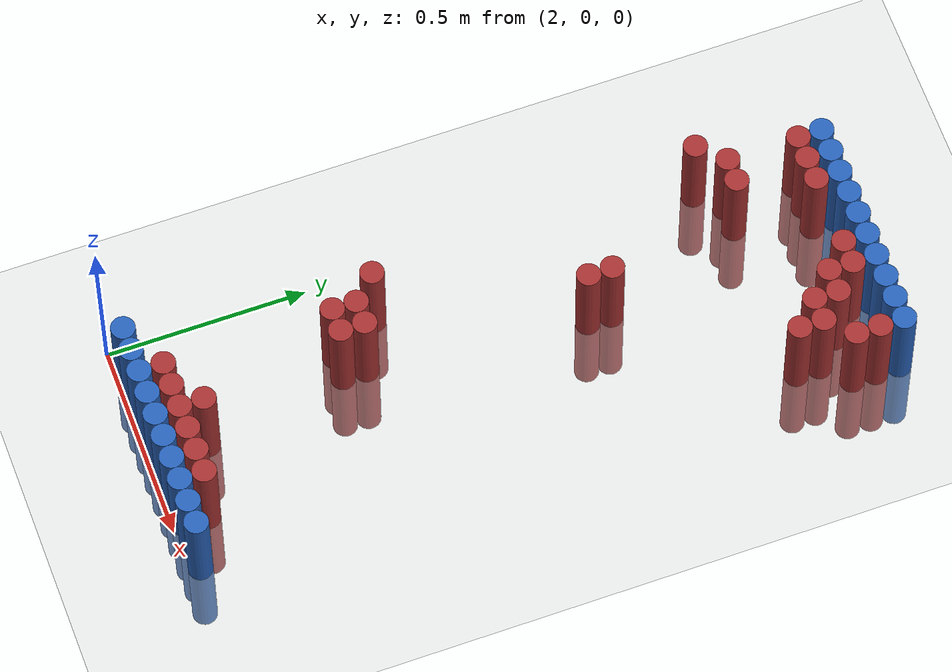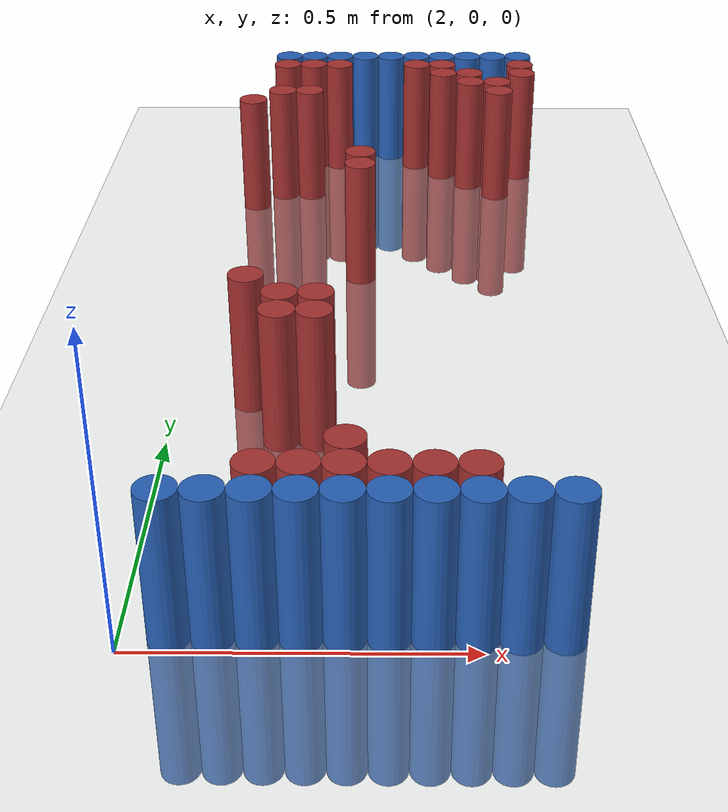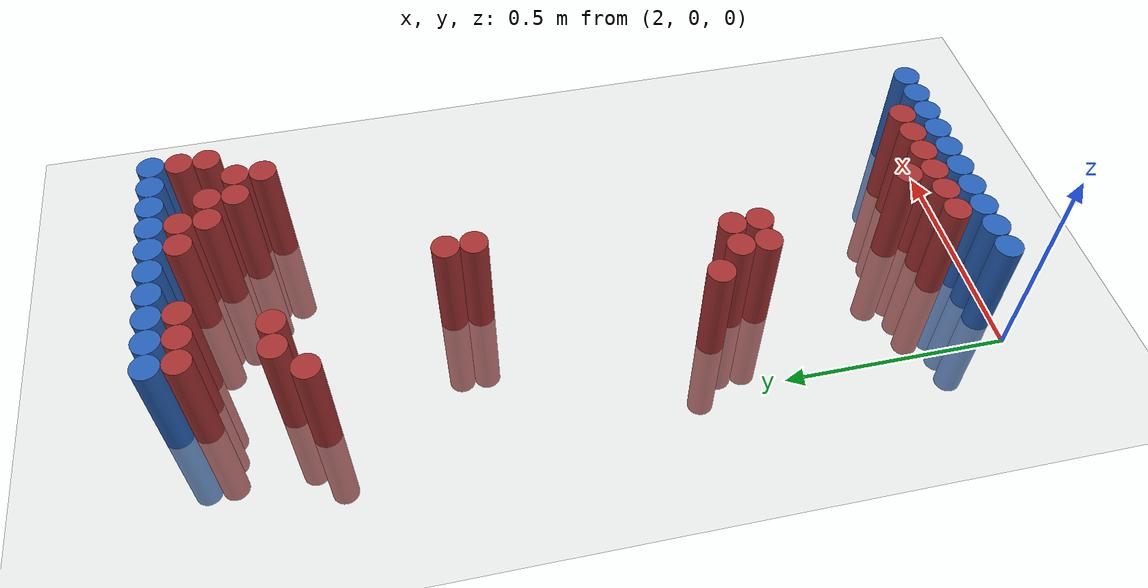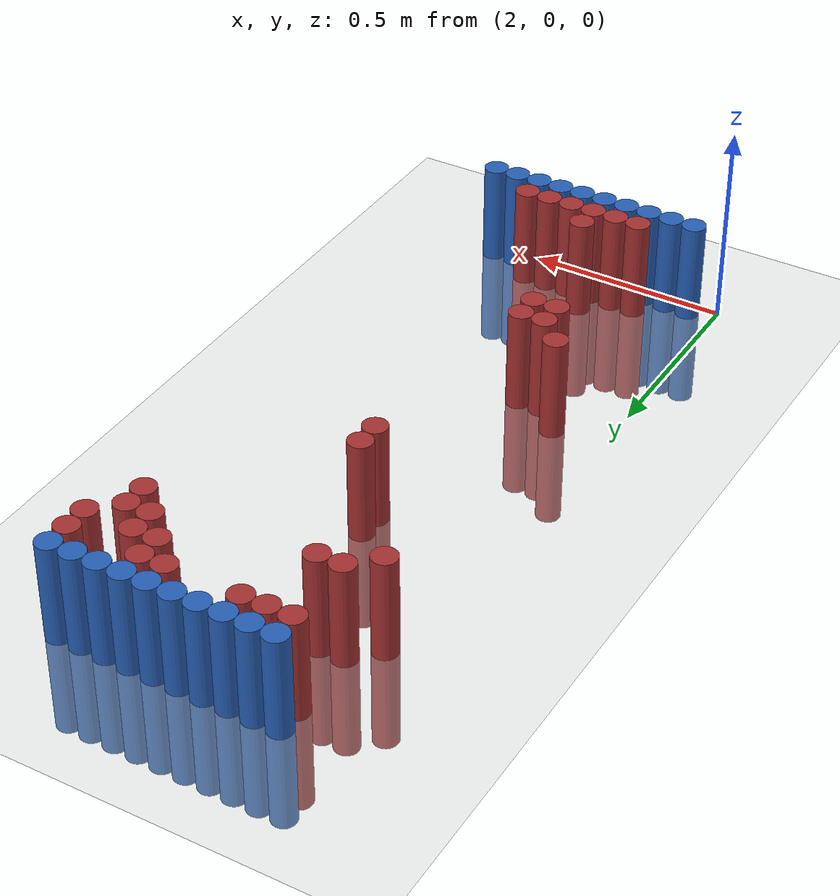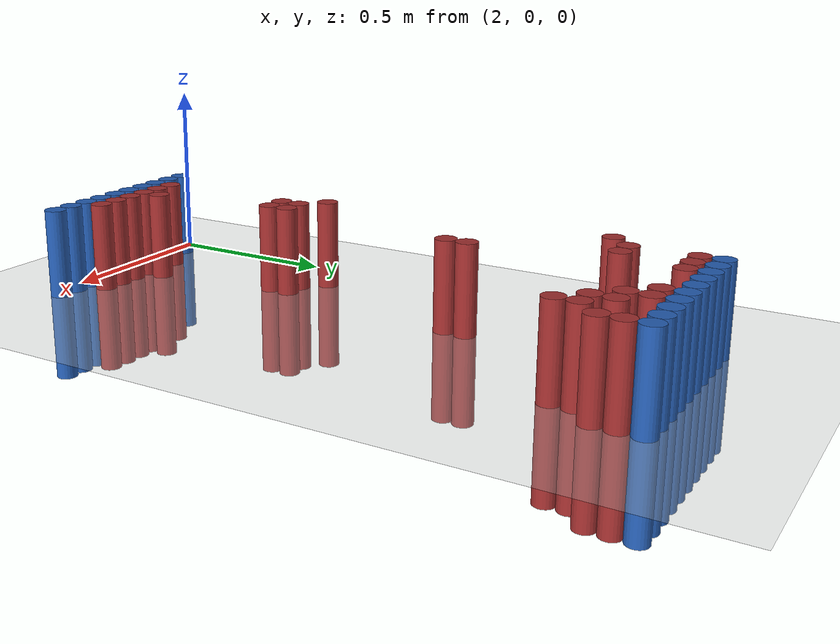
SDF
<sdf version="1.6">
 <world name="default">
  <model name="ground_plane">
   <static>1</static>
   <link name="link">
    <collision name="collision">
     <geometry><plane><normal>0 0 1</normal><size>100 100</size></plane></geometry>
     <surface><friction><ode><mu>100</mu><mu2>50</mu2></ode></friction></surface>
    </collision>
    <visual name="visual">
     <cast_shadows>0</cast_shadows>
     <geometry><plane><normal>0 0 1</normal><size>100 100</size></plane></geometry>
     <material>
      <script><uri>file://media/materials/scripts/gazebo.material</uri><name>Gazebo/Grey</name></script>
     </material>
    </visual>
   </link>
  </model>
  <model name="unit_cylinder_96">
   <static>1</static>
   <pose>2.130000 1.770000 0.000000 0.000000 0.000000 0.000000</pose>
   <link name="link">
    <inertial>
     <mass>1</mass>
     <inertia><ixx>0.145833</ixx><ixy>0</ixy><ixz>0</ixz><iyy>0.145833</iyy><iyz>0</iyz><izz>0.125</izz></inertia>
    </inertial>
    <collision name="collision">
     <geometry><cylinder><radius>0.030000</radius><length>0.5</length></cylinder></geometry>
    </collision>
    <visual name="visual">
     <geometry><cylinder><radius>0.030000</radius><length>0.5</length></cylinder></geometry>
     <material>
      <ambient>0.152000 0.379000 0.720000 1</ambient>
      <diffuse>0.152000 0.379000 0.720000 1</diffuse>
     </material>
     <material>
      <script><name>Gazebo/Grey</name><uri>file://media/materials/scripts/gazebo.material</uri></script>
     </material>
    </visual>
   </link>
  </model>
  <model name="unit_cylinder_97">
   <static>1</static>
   <pose>2.190000 1.770000 0.000000 0.000000 0.000000 0.000000</pose>
   <link name="link">
    <inertial>
     <mass>1</mass>
     <inertia><ixx>0.145833</ixx><ixy>0</ixy><ixz>0</ixz><iyy>0.145833</iyy><iyz>0</iyz><izz>0.125</izz></inertia>
    </inertial>
    <collision name="collision">
     <geometry><cylinder><radius>0.030000</radius><length>0.5</length></cylinder></geometry>
    </collision>
    <visual name="visual">
     <geometry><cylinder><radius>0.030000</radius><length>0.5</length></cylinder></geometry>
     <material>
      <ambient>0.152000 0.379000 0.720000 1</ambient>
      <diffuse>0.152000 0.379000 0.720000 1</diffuse>
     </material>
     <material>
      <script><name>Gazebo/Grey</name><uri>file://media/materials/scripts/gazebo.material</uri></script>
     </material>
    </visual>
   </link>
  </model>
  <model name="unit_cylinder_98">
   <static>1</static>
   <pose>2.250000 1.770000 0.000000 0.000000 0.000000 0.000000</pose>
   <link name="link">
    <inertial>
     <mass>1</mass>
     <inertia><ixx>0.145833</ixx><ixy>0</ixy><ixz>0</ixz><iyy>0.145833</iyy><iyz>0</iyz><izz>0.125</izz></inertia>
    </inertial>
    <collision name="collision">
     <geometry><cylinder><radius>0.030000</radius><length>0.5</length></cylinder></geometry>
    </collision>
    <visual name="visual">
     <geometry><cylinder><radius>0.030000</radius><length>0.5</length></cylinder></geometry>
     <material>
      <ambient>0.152000 0.379000 0.720000 1</ambient>
      <diffuse>0.152000 0.379000 0.720000 1</diffuse>
     </material>
     <material>
      <script><name>Gazebo/Grey</name><uri>file://media/materials/scripts/gazebo.material</uri></script>
     </material>
    </visual>
   </link>
  </model>
  <model name="unit_cylinder_99">
   <static>1</static>
   <pose>2.310000 1.770000 0.000000 0.000000 0.000000 0.000000</pose>
   <link name="link">
    <inertial>
     <mass>1</mass>
     <inertia><ixx>0.145833</ixx><ixy>0</ixy><ixz>0</ixz><iyy>0.145833</iyy><iyz>0</iyz><izz>0.125</izz></inertia>
    </inertial>
    <collision name="collision">
     <geometry><cylinder><radius>0.030000</radius><length>0.5</length></cylinder></geometry>
    </collision>
    <visual name="visual">
     <geometry><cylinder><radius>0.030000</radius><length>0.5</length></cylinder></geometry>
     <material>
      <ambient>0.152000 0.379000 0.720000 1</ambient>
      <diffuse>0.152000 0.379000 0.720000 1</diffuse>
     </material>
     <material>
      <script><name>Gazebo/Grey</name><uri>file://media/materials/scripts/gazebo.material</uri></script>
     </material>
    </visual>
   </link>
  </model>
  <model name="unit_cylinder_100">
   <static>1</static>
   <pose>2.370000 1.770000 0.000000 0.000000 0.000000 0.000000</pose>
   <link name="link">
    <inertial>
     <mass>1</mass>
     <inertia><ixx>0.145833</ixx><ixy>0</ixy><ixz>0</ixz><iyy>0.145833</iyy><iyz>0</iyz><izz>0.125</izz></inertia>
    </inertial>
    <collision name="collision">
     <geometry><cylinder><radius>0.030000</radius><length>0.5</length></cylinder></geometry>
    </collision>
    <visual name="visual">
     <geometry><cylinder><radius>0.030000</radius><length>0.5</length></cylinder></geometry>
     <material>
      <ambient>0.152000 0.379000 0.720000 1</ambient>
      <diffuse>0.152000 0.379000 0.720000 1</diffuse>
     </material>
     <material>
      <script><name>Gazebo/Grey</name><uri>file://media/materials/scripts/gazebo.material</uri></script>
     </material>
    </visual>
   </link>
  </model>
  <model name="unit_cylinder_101">
   <static>1</static>
   <pose>2.430000 1.770000 0.000000 0.000000 0.000000 0.000000</pose>
   <link name="link">
    <inertial>
     <mass>1</mass>
     <inertia><ixx>0.145833</ixx><ixy>0</ixy><ixz>0</ixz><iyy>0.145833</iyy><iyz>0</iyz><izz>0.125</izz></inertia>
    </inertial>
    <collision name="collision">
     <geometry><cylinder><radius>0.030000</radius><length>0.5</length></cylinder></geometry>
    </collision>
    <visual name="visual">
     <geometry><cylinder><radius>0.030000</radius><length>0.5</length></cylinder></geometry>
     <material>
      <ambient>0.152000 0.379000 0.720000 1</ambient>
      <diffuse>0.152000 0.379000 0.720000 1</diffuse>
     </material>
     <material>
      <script><name>Gazebo/Grey</name><uri>file://media/materials/scripts/gazebo.material</uri></script>
     </material>
    </visual>
   </link>
  </model>
  <model name="unit_cylinder_102">
   <static>1</static>
   <pose>2.490000 1.770000 0.000000 0.000000 0.000000 0.000000</pose>
   <link name="link">
    <inertial>
     <mass>1</mass>
     <inertia><ixx>0.145833</ixx><ixy>0</ixy><ixz>0</ixz><iyy>0.145833</iyy><iyz>0</iyz><izz>0.125</izz></inertia>
    </inertial>
    <collision name="collision">
     <geometry><cylinder><radius>0.030000</radius><length>0.5</length></cylinder></geometry>
    </collision>
    <visual name="visual">
     <geometry><cylinder><radius>0.030000</radius><length>0.5</length></cylinder></geometry>
     <material>
      <ambient>0.152000 0.379000 0.720000 1</ambient>
      <diffuse>0.152000 0.379000 0.720000 1</diffuse>
     </material>
     <material>
      <script><name>Gazebo/Grey</name><uri>file://media/materials/scripts/gazebo.material</uri></script>
     </material>
    </visual>
   </link>
  </model>
  <model name="unit_cylinder_103">
   <static>1</static>
   <pose>2.550000 1.770000 0.000000 0.000000 0.000000 0.000000</pose>
   <link name="link">
    <inertial>
     <mass>1</mass>
     <inertia><ixx>0.145833</ixx><ixy>0</ixy><ixz>0</ixz><iyy>0.145833</iyy><iyz>0</iyz><izz>0.125</izz></inertia>
    </inertial>
    <collision name="collision">
     <geometry><cylinder><radius>0.030000</radius><length>0.5</length></cylinder></geometry>
    </collision>
    <visual name="visual">
     <geometry><cylinder><radius>0.030000</radius><length>0.5</length></cylinder></geometry>
     <material>
      <ambient>0.152000 0.379000 0.720000 1</ambient>
      <diffuse>0.152000 0.379000 0.720000 1</diffuse>
     </material>
     <material>
      <script><name>Gazebo/Grey</name><uri>file://media/materials/scripts/gazebo.material</uri></script>
     </material>
    </visual>
   </link>
  </model>
  <model name="unit_cylinder_104">
   <static>1</static>
   <pose>2.610000 1.770000 0.000000 0.000000 0.000000 0.000000</pose>
   <link name="link">
    <inertial>
     <mass>1</mass>
     <inertia><ixx>0.145833</ixx><ixy>0</ixy><ixz>0</ixz><iyy>0.145833</iyy><iyz>0</iyz><izz>0.125</izz></inertia>
    </inertial>
    <collision name="collision">
     <geometry><cylinder><radius>0.030000</radius><length>0.5</length></cylinder></geometry>
    </collision>
    <visual name="visual">
     <geometry><cylinder><radius>0.030000</radius><length>0.5</length></cylinder></geometry>
     <material>
      <ambient>0.152000 0.379000 0.720000 1</ambient>
      <diffuse>0.152000 0.379000 0.720000 1</diffuse>
     </material>
     <material>
      <script><name>Gazebo/Grey</name><uri>file://media/materials/scripts/gazebo.material</uri></script>
     </material>
    </visual>
   </link>
  </model>
  <model name="unit_cylinder_105">
   <static>1</static>
   <pose>2.670000 1.770000 0.000000 0.000000 0.000000 0.000000</pose>
   <link name="link">
    <inertial>
     <mass>1</mass>
     <inertia><ixx>0.145833</ixx><ixy>0</ixy><ixz>0</ixz><iyy>0.145833</iyy><iyz>0</iyz><izz>0.125</izz></inertia>
    </inertial>
    <collision name="collision">
     <geometry><cylinder><radius>0.030000</radius><length>0.5</length></cylinder></geometry>
    </collision>
    <visual name="visual">
     <geometry><cylinder><radius>0.030000</radius><length>0.5</length></cylinder></geometry>
     <material>
      <ambient>0.152000 0.379000 0.720000 1</ambient>
      <diffuse>0.152000 0.379000 0.720000 1</diffuse>
     </material>
     <material>
      <script><name>Gazebo/Grey</name><uri>file://media/materials/scripts/gazebo.material</uri></script>
     </material>
    </visual>
   </link>
  </model>
  <model name="unit_cylinder_125">
   <static>1</static>
   <pose>2.130000 1.710000 0.000000 0.000000 0.000000 0.000000</pose>
   <link name="link">
    <inertial>
     <mass>1</mass>
     <inertia><ixx>0.145833</ixx><ixy>0</ixy><ixz>0</ixz><iyy>0.145833</iyy><iyz>0</iyz><izz>0.125</izz></inertia>
    </inertial>
    <collision name="collision">
     <geometry><cylinder><radius>0.030000</radius><length>0.5</length></cylinder></geometry>
    </collision>
    <visual name="visual">
     <geometry><cylinder><radius>0.030000</radius><length>0.5</length></cylinder></geometry>
     <material>
      <ambient>0.648000 0.192000 0.192000 1</ambient>
      <diffuse>0.648000 0.192000 0.192000 1</diffuse>
     </material>
     <material>
      <script><name>Gazebo/Grey</name><uri>file://media/materials/scripts/gazebo.material</uri></script>
     </material>
    </visual>
   </link>
  </model>
  <model name="unit_cylinder_126">
   <static>1</static>
   <pose>2.190000 1.710000 0.000000 0.000000 0.000000 0.000000</pose>
   <link name="link">
    <inertial>
     <mass>1</mass>
     <inertia><ixx>0.145833</ixx><ixy>0</ixy><ixz>0</ixz><iyy>0.145833</iyy><iyz>0</iyz><izz>0.125</izz></inertia>
    </inertial>
    <collision name="collision">
     <geometry><cylinder><radius>0.030000</radius><length>0.5</length></cylinder></geometry>
    </collision>
    <visual name="visual">
     <geometry><cylinder><radius>0.030000</radius><length>0.5</length></cylinder></geometry>
     <material>
      <ambient>0.648000 0.192000 0.192000 1</ambient>
      <diffuse>0.648000 0.192000 0.192000 1</diffuse>
     </material>
     <material>
      <script><name>Gazebo/Grey</name><uri>file://media/materials/scripts/gazebo.material</uri></script>
     </material>
    </visual>
   </link>
  </model>
  <model name="unit_cylinder_127">
   <static>1</static>
   <pose>2.250000 1.710000 0.000000 0.000000 0.000000 0.000000</pose>
   <link name="link">
    <inertial>
     <mass>1</mass>
     <inertia><ixx>0.145833</ixx><ixy>0</ixy><ixz>0</ixz><iyy>0.145833</iyy><iyz>0</iyz><izz>0.125</izz></inertia>
    </inertial>
    <collision name="collision">
     <geometry><cylinder><radius>0.030000</radius><length>0.5</length></cylinder></geometry>
    </collision>
    <visual name="visual">
     <geometry><cylinder><radius>0.030000</radius><length>0.5</length></cylinder></geometry>
     <material>
      <ambient>0.648000 0.192000 0.192000 1</ambient>
      <diffuse>0.648000 0.192000 0.192000 1</diffuse>
     </material>
     <material>
      <script><name>Gazebo/Grey</name><uri>file://media/materials/scripts/gazebo.material</uri></script>
     </material>
    </visual>
   </link>
  </model>
  <model name="unit_cylinder_128">
   <static>1</static>
   <pose>2.430000 1.710000 0.000000 0.000000 0.000000 0.000000</pose>
   <link name="link">
    <inertial>
     <mass>1</mass>
     <inertia><ixx>0.145833</ixx><ixy>0</ixy><ixz>0</ixz><iyy>0.145833</iyy><iyz>0</iyz><izz>0.125</izz></inertia>
    </inertial>
    <collision name="collision">
     <geometry><cylinder><radius>0.030000</radius><length>0.5</length></cylinder></geometry>
    </collision>
    <visual name="visual">
     <geometry><cylinder><radius>0.030000</radius><length>0.5</length></cylinder></geometry>
     <material>
      <ambient>0.648000 0.192000 0.192000 1</ambient>
      <diffuse>0.648000 0.192000 0.192000 1</diffuse>
     </material>
     <material>
      <script><name>Gazebo/Grey</name><uri>file://media/materials/scripts/gazebo.material</uri></script>
     </material>
    </visual>
   </link>
  </model>
  <model name="unit_cylinder_129">
   <static>1</static>
   <pose>2.490000 1.710000 0.000000 0.000000 0.000000 0.000000</pose>
   <link name="link">
    <inertial>
     <mass>1</mass>
     <inertia><ixx>0.145833</ixx><ixy>0</ixy><ixz>0</ixz><iyy>0.145833</iyy><iyz>0</iyz><izz>0.125</izz></inertia>
    </inertial>
    <collision name="collision">
     <geometry><cylinder><radius>0.030000</radius><length>0.5</length></cylinder></geometry>
    </collision>
    <visual name="visual">
     <geometry><cylinder><radius>0.030000</radius><length>0.5</length></cylinder></geometry>
     <material>
      <ambient>0.648000 0.192000 0.192000 1</ambient>
      <diffuse>0.648000 0.192000 0.192000 1</diffuse>
     </material>
     <material>
      <script><name>Gazebo/Grey</name><uri>file://media/materials/scripts/gazebo.material</uri></script>
     </material>
    </visual>
   </link>
  </model>
  <model name="unit_cylinder_130">
   <static>1</static>
   <pose>2.670000 1.710000 0.000000 0.000000 0.000000 0.000000</pose>
   <link name="link">
    <inertial>
     <mass>1</mass>
     <inertia><ixx>0.145833</ixx><ixy>0</ixy><ixz>0</ixz><iyy>0.145833</iyy><iyz>0</iyz><izz>0.125</izz></inertia>
    </inertial>
    <collision name="collision">
     <geometry><cylinder><radius>0.030000</radius><length>0.5</length></cylinder></geometry>
    </collision>
    <visual name="visual">
     <geometry><cylinder><radius>0.030000</radius><length>0.5</length></cylinder></geometry>
     <material>
      <ambient>0.648000 0.192000 0.192000 1</ambient>
      <diffuse>0.648000 0.192000 0.192000 1</diffuse>
     </material>
     <material>
      <script><name>Gazebo/Grey</name><uri>file://media/materials/scripts/gazebo.material</uri></script>
     </material>
    </visual>
   </link>
  </model>
  <model name="unit_cylinder_139">
   <static>1</static>
   <pose>2.490000 1.650000 0.000000 0.000000 0.000000 0.000000</pose>
   <link name="link">
    <inertial>
     <mass>1</mass>
     <inertia><ixx>0.145833</ixx><ixy>0</ixy><ixz>0</ixz><iyy>0.145833</iyy><iyz>0</iyz><izz>0.125</izz></inertia>
    </inertial>
    <collision name="collision">
     <geometry><cylinder><radius>0.030000</radius><length>0.5</length></cylinder></geometry>
    </collision>
    <visual name="visual">
     <geometry><cylinder><radius>0.030000</radius><length>0.5</length></cylinder></geometry>
     <material>
      <ambient>0.648000 0.192000 0.192000 1</ambient>
      <diffuse>0.648000 0.192000 0.192000 1</diffuse>
     </material>
     <material>
      <script><name>Gazebo/Grey</name><uri>file://media/materials/scripts/gazebo.material</uri></script>
     </material>
    </visual>
   </link>
  </model>
  <model name="unit_cylinder_140">
   <static>1</static>
   <pose>2.550000 1.650000 0.000000 0.000000 0.000000 0.000000</pose>
   <link name="link">
    <inertial>
     <mass>1</mass>
     <inertia><ixx>0.145833</ixx><ixy>0</ixy><ixz>0</ixz><iyy>0.145833</iyy><iyz>0</iyz><izz>0.125</izz></inertia>
    </inertial>
    <collision name="collision">
     <geometry><cylinder><radius>0.030000</radius><length>0.5</length></cylinder></geometry>
    </collision>
    <visual name="visual">
     <geometry><cylinder><radius>0.030000</radius><length>0.5</length></cylinder></geometry>
     <material>
      <ambient>0.648000 0.192000 0.192000 1</ambient>
      <diffuse>0.648000 0.192000 0.192000 1</diffuse>
     </material>
     <material>
      <script><name>Gazebo/Grey</name><uri>file://media/materials/scripts/gazebo.material</uri></script>
     </material>
    </visual>
   </link>
  </model>
  <model name="unit_cylinder_141">
   <static>1</static>
   <pose>2.670000 1.650000 0.000000 0.000000 0.000000 0.000000</pose>
   <link name="link">
    <inertial>
     <mass>1</mass>
     <inertia><ixx>0.145833</ixx><ixy>0</ixy><ixz>0</ixz><iyy>0.145833</iyy><iyz>0</iyz><izz>0.125</izz></inertia>
    </inertial>
    <collision name="collision">
     <geometry><cylinder><radius>0.030000</radius><length>0.5</length></cylinder></geometry>
    </collision>
    <visual name="visual">
     <geometry><cylinder><radius>0.030000</radius><length>0.5</length></cylinder></geometry>
     <material>
      <ambient>0.648000 0.192000 0.192000 1</ambient>
      <diffuse>0.648000 0.192000 0.192000 1</diffuse>
     </material>
     <material>
      <script><name>Gazebo/Grey</name><uri>file://media/materials/scripts/gazebo.material</uri></script>
     </material>
    </visual>
   </link>
  </model>
  <model name="unit_cylinder_149">
   <static>1</static>
   <pose>2.550000 1.590000 0.000000 0.000000 0.000000 0.000000</pose>
   <link name="link">
    <inertial>
     <mass>1</mass>
     <inertia><ixx>0.145833</ixx><ixy>0</ixy><ixz>0</ixz><iyy>0.145833</iyy><iyz>0</iyz><izz>0.125</izz></inertia>
    </inertial>
    <collision name="collision">
     <geometry><cylinder><radius>0.030000</radius><length>0.5</length></cylinder></geometry>
    </collision>
    <visual name="visual">
     <geometry><cylinder><radius>0.030000</radius><length>0.5</length></cylinder></geometry>
     <material>
      <ambient>0.648000 0.192000 0.192000 1</ambient>
      <diffuse>0.648000 0.192000 0.192000 1</diffuse>
     </material>
     <material>
      <script><name>Gazebo/Grey</name><uri>file://media/materials/scripts/gazebo.material</uri></script>
     </material>
    </visual>
   </link>
  </model>
  <model name="unit_cylinder_150">
   <static>1</static>
   <pose>2.610000 1.590000 0.000000 0.000000 0.000000 0.000000</pose>
   <link name="link">
    <inertial>
     <mass>1</mass>
     <inertia><ixx>0.145833</ixx><ixy>0</ixy><ixz>0</ixz><iyy>0.145833</iyy><iyz>0</iyz><izz>0.125</izz></inertia>
    </inertial>
    <collision name="collision">
     <geometry><cylinder><radius>0.030000</radius><length>0.5</length></cylinder></geometry>
    </collision>
    <visual name="visual">
     <geometry><cylinder><radius>0.030000</radius><length>0.5</length></cylinder></geometry>
     <material>
      <ambient>0.648000 0.192000 0.192000 1</ambient>
      <diffuse>0.648000 0.192000 0.192000 1</diffuse>
     </material>
     <material>
      <script><name>Gazebo/Grey</name><uri>file://media/materials/scripts/gazebo.material</uri></script>
     </material>
    </visual>
   </link>
  </model>
  <model name="unit_cylinder_155">
   <static>1</static>
   <pose>2.130000 1.530000 0.000000 0.000000 0.000000 0.000000</pose>
   <link name="link">
    <inertial>
     <mass>1</mass>
     <inertia><ixx>0.145833</ixx><ixy>0</ixy><ixz>0</ixz><iyy>0.145833</iyy><iyz>0</iyz><izz>0.125</izz></inertia>
    </inertial>
    <collision name="collision">
     <geometry><cylinder><radius>0.030000</radius><length>0.5</length></cylinder></geometry>
    </collision>
    <visual name="visual">
     <geometry><cylinder><radius>0.030000</radius><length>0.5</length></cylinder></geometry>
     <material>
      <ambient>0.648000 0.192000 0.192000 1</ambient>
      <diffuse>0.648000 0.192000 0.192000 1</diffuse>
     </material>
     <material>
      <script><name>Gazebo/Grey</name><uri>file://media/materials/scripts/gazebo.material</uri></script>
     </material>
    </visual>
   </link>
  </model>
  <model name="unit_cylinder_156">
   <static>1</static>
   <pose>2.190000 1.530000 0.000000 0.000000 0.000000 0.000000</pose>
   <link name="link">
    <inertial>
     <mass>1</mass>
     <inertia><ixx>0.145833</ixx><ixy>0</ixy><ixz>0</ixz><iyy>0.145833</iyy><iyz>0</iyz><izz>0.125</izz></inertia>
    </inertial>
    <collision name="collision">
     <geometry><cylinder><radius>0.030000</radius><length>0.5</length></cylinder></geometry>
    </collision>
    <visual name="visual">
     <geometry><cylinder><radius>0.030000</radius><length>0.5</length></cylinder></geometry>
     <material>
      <ambient>0.648000 0.192000 0.192000 1</ambient>
      <diffuse>0.648000 0.192000 0.192000 1</diffuse>
     </material>
     <material>
      <script><name>Gazebo/Grey</name><uri>file://media/materials/scripts/gazebo.material</uri></script>
     </material>
    </visual>
   </link>
  </model>
  <model name="unit_cylinder_157">
   <static>1</static>
   <pose>2.610000 1.530000 0.000000 0.000000 0.000000 0.000000</pose>
   <link name="link">
    <inertial>
     <mass>1</mass>
     <inertia><ixx>0.145833</ixx><ixy>0</ixy><ixz>0</ixz><iyy>0.145833</iyy><iyz>0</iyz><izz>0.125</izz></inertia>
    </inertial>
    <collision name="collision">
     <geometry><cylinder><radius>0.030000</radius><length>0.5</length></cylinder></geometry>
    </collision>
    <visual name="visual">
     <geometry><cylinder><radius>0.030000</radius><length>0.5</length></cylinder></geometry>
     <material>
      <ambient>0.648000 0.192000 0.192000 1</ambient>
      <diffuse>0.648000 0.192000 0.192000 1</diffuse>
     </material>
     <material>
      <script><name>Gazebo/Grey</name><uri>file://media/materials/scripts/gazebo.material</uri></script>
     </material>
    </visual>
   </link>
  </model>
  <model name="unit_cylinder_164">
   <static>1</static>
   <pose>2.070000 1.470000 0.000000 0.000000 0.000000 0.000000</pose>
   <link name="link">
    <inertial>
     <mass>1</mass>
     <inertia><ixx>0.145833</ixx><ixy>0</ixy><ixz>0</ixz><iyy>0.145833</iyy><iyz>0</iyz><izz>0.125</izz></inertia>
    </inertial>
    <collision name="collision">
     <geometry><cylinder><radius>0.030000</radius><length>0.5</length></cylinder></geometry>
    </collision>
    <visual name="visual">
     <geometry><cylinder><radius>0.030000</radius><length>0.5</length></cylinder></geometry>
     <material>
      <ambient>0.648000 0.192000 0.192000 1</ambient>
      <diffuse>0.648000 0.192000 0.192000 1</diffuse>
     </material>
     <material>
      <script><name>Gazebo/Grey</name><uri>file://media/materials/scripts/gazebo.material</uri></script>
     </material>
    </visual>
   </link>
  </model>
  <model name="unit_cylinder_191">
   <static>1</static>
   <pose>2.310000 1.170000 0.000000 0.000000 0.000000 0.000000</pose>
   <link name="link">
    <inertial>
     <mass>1</mass>
     <inertia><ixx>0.145833</ixx><ixy>0</ixy><ixz>0</ixz><iyy>0.145833</iyy><iyz>0</iyz><izz>0.125</izz></inertia>
    </inertial>
    <collision name="collision">
     <geometry><cylinder><radius>0.030000</radius><length>0.5</length></cylinder></geometry>
    </collision>
    <visual name="visual">
     <geometry><cylinder><radius>0.030000</radius><length>0.5</length></cylinder></geometry>
     <material>
      <ambient>0.648000 0.192000 0.192000 1</ambient>
      <diffuse>0.648000 0.192000 0.192000 1</diffuse>
     </material>
     <material>
      <script><name>Gazebo/Grey</name><uri>file://media/materials/scripts/gazebo.material</uri></script>
     </material>
    </visual>
   </link>
  </model>
  <model name="unit_cylinder_193">
   <static>1</static>
   <pose>2.310000 1.110000 0.000000 0.000000 0.000000 0.000000</pose>
   <link name="link">
    <inertial>
     <mass>1</mass>
     <inertia><ixx>0.145833</ixx><ixy>0</ixy><ixz>0</ixz><iyy>0.145833</iyy><iyz>0</iyz><izz>0.125</izz></inertia>
    </inertial>
    <collision name="collision">
     <geometry><cylinder><radius>0.030000</radius><length>0.5</length></cylinder></geometry>
    </collision>
    <visual name="visual">
     <geometry><cylinder><radius>0.030000</radius><length>0.5</length></cylinder></geometry>
     <material>
      <ambient>0.648000 0.192000 0.192000 1</ambient>
      <diffuse>0.648000 0.192000 0.192000 1</diffuse>
     </material>
     <material>
      <script><name>Gazebo/Grey</name><uri>file://media/materials/scripts/gazebo.material</uri></script>
     </material>
    </visual>
   </link>
  </model>
  <model name="unit_cylinder_211">
   <static>1</static>
   <pose>2.130000 0.630000 0.000000 0.000000 0.000000 0.000000</pose>
   <link name="link">
    <inertial>
     <mass>1</mass>
     <inertia><ixx>0.145833</ixx><ixy>0</ixy><ixz>0</ixz><iyy>0.145833</iyy><iyz>0</iyz><izz>0.125</izz></inertia>
    </inertial>
    <collision name="collision">
     <geometry><cylinder><radius>0.030000</radius><length>0.5</length></cylinder></geometry>
    </collision>
    <visual name="visual">
     <geometry><cylinder><radius>0.030000</radius><length>0.5</length></cylinder></geometry>
     <material>
      <ambient>0.648000 0.192000 0.192000 1</ambient>
      <diffuse>0.648000 0.192000 0.192000 1</diffuse>
     </material>
     <material>
      <script><name>Gazebo/Grey</name><uri>file://media/materials/scripts/gazebo.material</uri></script>
     </material>
    </visual>
   </link>
  </model>
  <model name="unit_cylinder_218">
   <static>1</static>
   <pose>2.190000 0.570000 0.000000 0.000000 0.000000 0.000000</pose>
   <link name="link">
    <inertial>
     <mass>1</mass>
     <inertia><ixx>0.145833</ixx><ixy>0</ixy><ixz>0</ixz><iyy>0.145833</iyy><iyz>0</iyz><izz>0.125</izz></inertia>
    </inertial>
    <collision name="collision">
     <geometry><cylinder><radius>0.030000</radius><length>0.5</length></cylinder></geometry>
    </collision>
    <visual name="visual">
     <geometry><cylinder><radius>0.030000</radius><length>0.5</length></cylinder></geometry>
     <material>
      <ambient>0.648000 0.192000 0.192000 1</ambient>
      <diffuse>0.648000 0.192000 0.192000 1</diffuse>
     </material>
     <material>
      <script><name>Gazebo/Grey</name><uri>file://media/materials/scripts/gazebo.material</uri></script>
     </material>
    </visual>
   </link>
  </model>
  <model name="unit_cylinder_219">
   <static>1</static>
   <pose>2.250000 0.570000 0.000000 0.000000 0.000000 0.000000</pose>
   <link name="link">
    <inertial>
     <mass>1</mass>
     <inertia><ixx>0.145833</ixx><ixy>0</ixy><ixz>0</ixz><iyy>0.145833</iyy><iyz>0</iyz><izz>0.125</izz></inertia>
    </inertial>
    <collision name="collision">
     <geometry><cylinder><radius>0.030000</radius><length>0.5</length></cylinder></geometry>
    </collision>
    <visual name="visual">
     <geometry><cylinder><radius>0.030000</radius><length>0.5</length></cylinder></geometry>
     <material>
      <ambient>0.648000 0.192000 0.192000 1</ambient>
      <diffuse>0.648000 0.192000 0.192000 1</diffuse>
     </material>
     <material>
      <script><name>Gazebo/Grey</name><uri>file://media/materials/scripts/gazebo.material</uri></script>
     </material>
    </visual>
   </link>
  </model>
  <model name="unit_cylinder_225">
   <static>1</static>
   <pose>2.190000 0.510000 0.000000 0.000000 0.000000 0.000000</pose>
   <link name="link">
    <inertial>
     <mass>1</mass>
     <inertia><ixx>0.145833</ixx><ixy>0</ixy><ixz>0</ixz><iyy>0.145833</iyy><iyz>0</iyz><izz>0.125</izz></inertia>
    </inertial>
    <collision name="collision">
     <geometry><cylinder><radius>0.030000</radius><length>0.5</length></cylinder></geometry>
    </collision>
    <visual name="visual">
     <geometry><cylinder><radius>0.030000</radius><length>0.5</length></cylinder></geometry>
     <material>
      <ambient>0.648000 0.192000 0.192000 1</ambient>
      <diffuse>0.648000 0.192000 0.192000 1</diffuse>
     </material>
     <material>
      <script><name>Gazebo/Grey</name><uri>file://media/materials/scripts/gazebo.material</uri></script>
     </material>
    </visual>
   </link>
  </model>
  <model name="unit_cylinder_226">
   <static>1</static>
   <pose>2.250000 0.510000 0.000000 0.000000 0.000000 0.000000</pose>
   <link name="link">
    <inertial>
     <mass>1</mass>
     <inertia><ixx>0.145833</ixx><ixy>0</ixy><ixz>0</ixz><iyy>0.145833</iyy><iyz>0</iyz><izz>0.125</izz></inertia>
    </inertial>
    <collision name="collision">
     <geometry><cylinder><radius>0.030000</radius><length>0.5</length></cylinder></geometry>
    </collision>
    <visual name="visual">
     <geometry><cylinder><radius>0.030000</radius><length>0.5</length></cylinder></geometry>
     <material>
      <ambient>0.648000 0.192000 0.192000 1</ambient>
      <diffuse>0.648000 0.192000 0.192000 1</diffuse>
     </material>
     <material>
      <script><name>Gazebo/Grey</name><uri>file://media/materials/scripts/gazebo.material</uri></script>
     </material>
    </visual>
   </link>
  </model>
  <model name="unit_cylinder_240">
   <static>1</static>
   <pose>2.310000 0.150000 0.000000 0.000000 0.000000 0.000000</pose>
   <link name="link">
    <inertial>
     <mass>1</mass>
     <inertia><ixx>0.145833</ixx><ixy>0</ixy><ixz>0</ixz><iyy>0.145833</iyy><iyz>0</iyz><izz>0.125</izz></inertia>
    </inertial>
    <collision name="collision">
     <geometry><cylinder><radius>0.030000</radius><length>0.5</length></cylinder></geometry>
    </collision>
    <visual name="visual">
     <geometry><cylinder><radius>0.030000</radius><length>0.5</length></cylinder></geometry>
     <material>
      <ambient>0.648000 0.192000 0.192000 1</ambient>
      <diffuse>0.648000 0.192000 0.192000 1</diffuse>
     </material>
     <material>
      <script><name>Gazebo/Grey</name><uri>file://media/materials/scripts/gazebo.material</uri></script>
     </material>
    </visual>
   </link>
  </model>
  <model name="unit_cylinder_244">
   <static>1</static>
   <pose>2.190000 0.090000 0.000000 0.000000 0.000000 0.000000</pose>
   <link name="link">
    <inertial>
     <mass>1</mass>
     <inertia><ixx>0.145833</ixx><ixy>0</ixy><ixz>0</ixz><iyy>0.145833</iyy><iyz>0</iyz><izz>0.125</izz></inertia>
    </inertial>
    <collision name="collision">
     <geometry><cylinder><radius>0.030000</radius><length>0.5</length></cylinder></geometry>
    </collision>
    <visual name="visual">
     <geometry><cylinder><radius>0.030000</radius><length>0.5</length></cylinder></geometry>
     <material>
      <ambient>0.648000 0.192000 0.192000 1</ambient>
      <diffuse>0.648000 0.192000 0.192000 1</diffuse>
     </material>
     <material>
      <script><name>Gazebo/Grey</name><uri>file://media/materials/scripts/gazebo.material</uri></script>
     </material>
    </visual>
   </link>
  </model>
  <model name="unit_cylinder_245">
   <static>1</static>
   <pose>2.250000 0.090000 0.000000 0.000000 0.000000 0.000000</pose>
   <link name="link">
    <inertial>
     <mass>1</mass>
     <inertia><ixx>0.145833</ixx><ixy>0</ixy><ixz>0</ixz><iyy>0.145833</iyy><iyz>0</iyz><izz>0.125</izz></inertia>
    </inertial>
    <collision name="collision">
     <geometry><cylinder><radius>0.030000</radius><length>0.5</length></cylinder></geometry>
    </collision>
    <visual name="visual">
     <geometry><cylinder><radius>0.030000</radius><length>0.5</length></cylinder></geometry>
     <material>
      <ambient>0.648000 0.192000 0.192000 1</ambient>
      <diffuse>0.648000 0.192000 0.192000 1</diffuse>
     </material>
     <material>
      <script><name>Gazebo/Grey</name><uri>file://media/materials/scripts/gazebo.material</uri></script>
     </material>
    </visual>
   </link>
  </model>
  <model name="unit_cylinder_246">
   <static>1</static>
   <pose>2.310000 0.090000 0.000000 0.000000 0.000000 0.000000</pose>
   <link name="link">
    <inertial>
     <mass>1</mass>
     <inertia><ixx>0.145833</ixx><ixy>0</ixy><ixz>0</ixz><iyy>0.145833</iyy><iyz>0</iyz><izz>0.125</izz></inertia>
    </inertial>
    <collision name="collision">
     <geometry><cylinder><radius>0.030000</radius><length>0.5</length></cylinder></geometry>
    </collision>
    <visual name="visual">
     <geometry><cylinder><radius>0.030000</radius><length>0.5</length></cylinder></geometry>
     <material>
      <ambient>0.648000 0.192000 0.192000 1</ambient>
      <diffuse>0.648000 0.192000 0.192000 1</diffuse>
     </material>
     <material>
      <script><name>Gazebo/Grey</name><uri>file://media/materials/scripts/gazebo.material</uri></script>
     </material>
    </visual>
   </link>
  </model>
  <model name="unit_cylinder_247">
   <static>1</static>
   <pose>2.370000 0.090000 0.000000 0.000000 0.000000 0.000000</pose>
   <link name="link">
    <inertial>
     <mass>1</mass>
     <inertia><ixx>0.145833</ixx><ixy>0</ixy><ixz>0</ixz><iyy>0.145833</iyy><iyz>0</iyz><izz>0.125</izz></inertia>
    </inertial>
    <collision name="collision">
     <geometry><cylinder><radius>0.030000</radius><length>0.5</length></cylinder></geometry>
    </collision>
    <visual name="visual">
     <geometry><cylinder><radius>0.030000</radius><length>0.5</length></cylinder></geometry>
     <material>
      <ambient>0.648000 0.192000 0.192000 1</ambient>
      <diffuse>0.648000 0.192000 0.192000 1</diffuse>
     </material>
     <material>
      <script><name>Gazebo/Grey</name><uri>file://media/materials/scripts/gazebo.material</uri></script>
     </material>
    </visual>
   </link>
  </model>
  <model name="unit_cylinder_248">
   <static>1</static>
   <pose>2.430000 0.090000 0.000000 0.000000 0.000000 0.000000</pose>
   <link name="link">
    <inertial>
     <mass>1</mass>
     <inertia><ixx>0.145833</ixx><ixy>0</ixy><ixz>0</ixz><iyy>0.145833</iyy><iyz>0</iyz><izz>0.125</izz></inertia>
    </inertial>
    <collision name="collision">
     <geometry><cylinder><radius>0.030000</radius><length>0.5</length></cylinder></geometry>
    </collision>
    <visual name="visual">
     <geometry><cylinder><radius>0.030000</radius><length>0.5</length></cylinder></geometry>
     <material>
      <ambient>0.648000 0.192000 0.192000 1</ambient>
      <diffuse>0.648000 0.192000 0.192000 1</diffuse>
     </material>
     <material>
      <script><name>Gazebo/Grey</name><uri>file://media/materials/scripts/gazebo.material</uri></script>
     </material>
    </visual>
   </link>
  </model>
  <model name="unit_cylinder_249">
   <static>1</static>
   <pose>2.490000 0.090000 0.000000 0.000000 0.000000 0.000000</pose>
   <link name="link">
    <inertial>
     <mass>1</mass>
     <inertia><ixx>0.145833</ixx><ixy>0</ixy><ixz>0</ixz><iyy>0.145833</iyy><iyz>0</iyz><izz>0.125</izz></inertia>
    </inertial>
    <collision name="collision">
     <geometry><cylinder><radius>0.030000</radius><length>0.5</length></cylinder></geometry>
    </collision>
    <visual name="visual">
     <geometry><cylinder><radius>0.030000</radius><length>0.5</length></cylinder></geometry>
     <material>
      <ambient>0.648000 0.192000 0.192000 1</ambient>
      <diffuse>0.648000 0.192000 0.192000 1</diffuse>
     </material>
     <material>
      <script><name>Gazebo/Grey</name><uri>file://media/materials/scripts/gazebo.material</uri></script>
     </material>
    </visual>
   </link>
  </model>
  <model name="unit_cylinder_260">
   <static>1</static>
   <pose>2.070000 0.030000 0.000000 0.000000 0.000000 0.000000</pose>
   <link name="link">
    <inertial>
     <mass>1</mass>
     <inertia><ixx>0.145833</ixx><ixy>0</ixy><ixz>0</ixz><iyy>0.145833</iyy><iyz>0</iyz><izz>0.125</izz></inertia>
    </inertial>
    <collision name="collision">
     <geometry><cylinder><radius>0.030000</radius><length>0.5</length></cylinder></geometry>
    </collision>
    <visual name="visual">
     <geometry><cylinder><radius>0.030000</radius><length>0.5</length></cylinder></geometry>
     <material>
      <ambient>0.152000 0.379000 0.720000 1</ambient>
      <diffuse>0.152000 0.379000 0.720000 1</diffuse>
     </material>
     <material>
      <script><name>Gazebo/Grey</name><uri>file://media/materials/scripts/gazebo.material</uri></script>
     </material>
    </visual>
   </link>
  </model>
  <model name="unit_cylinder_261">
   <static>1</static>
   <pose>2.130000 0.030000 0.000000 0.000000 0.000000 0.000000</pose>
   <link name="link">
    <inertial>
     <mass>1</mass>
     <inertia><ixx>0.145833</ixx><ixy>0</ixy><ixz>0</ixz><iyy>0.145833</iyy><iyz>0</iyz><izz>0.125</izz></inertia>
    </inertial>
    <collision name="collision">
     <geometry><cylinder><radius>0.030000</radius><length>0.5</length></cylinder></geometry>
    </collision>
    <visual name="visual">
     <geometry><cylinder><radius>0.030000</radius><length>0.5</length></cylinder></geometry>
     <material>
      <ambient>0.152000 0.379000 0.720000 1</ambient>
      <diffuse>0.152000 0.379000 0.720000 1</diffuse>
     </material>
     <material>
      <script><name>Gazebo/Grey</name><uri>file://media/materials/scripts/gazebo.material</uri></script>
     </material>
    </visual>
   </link>
  </model>
  <model name="unit_cylinder_262">
   <static>1</static>
   <pose>2.190000 0.030000 0.000000 0.000000 0.000000 0.000000</pose>
   <link name="link">
    <inertial>
     <mass>1</mass>
     <inertia><ixx>0.145833</ixx><ixy>0</ixy><ixz>0</ixz><iyy>0.145833</iyy><iyz>0</iyz><izz>0.125</izz></inertia>
    </inertial>
    <collision name="collision">
     <geometry><cylinder><radius>0.030000</radius><length>0.5</length></cylinder></geometry>
    </collision>
    <visual name="visual">
     <geometry><cylinder><radius>0.030000</radius><length>0.5</length></cylinder></geometry>
     <material>
      <ambient>0.152000 0.379000 0.720000 1</ambient>
      <diffuse>0.152000 0.379000 0.720000 1</diffuse>
     </material>
     <material>
      <script><name>Gazebo/Grey</name><uri>file://media/materials/scripts/gazebo.material</uri></script>
     </material>
    </visual>
   </link>
  </model>
  <model name="unit_cylinder_263">
   <static>1</static>
   <pose>2.250000 0.030000 0.000000 0.000000 0.000000 0.000000</pose>
   <link name="link">
    <inertial>
     <mass>1</mass>
     <inertia><ixx>0.145833</ixx><ixy>0</ixy><ixz>0</ixz><iyy>0.145833</iyy><iyz>0</iyz><izz>0.125</izz></inertia>
    </inertial>
    <collision name="collision">
     <geometry><cylinder><radius>0.030000</radius><length>0.5</length></cylinder></geometry>
    </collision>
    <visual name="visual">
     <geometry><cylinder><radius>0.030000</radius><length>0.5</length></cylinder></geometry>
     <material>
      <ambient>0.152000 0.379000 0.720000 1</ambient>
      <diffuse>0.152000 0.379000 0.720000 1</diffuse>
     </material>
     <material>
      <script><name>Gazebo/Grey</name><uri>file://media/materials/scripts/gazebo.material</uri></script>
     </material>
    </visual>
   </link>
  </model>
  <model name="unit_cylinder_264">
   <static>1</static>
   <pose>2.310000 0.030000 0.000000 0.000000 0.000000 0.000000</pose>
   <link name="link">
    <inertial>
     <mass>1</mass>
     <inertia><ixx>0.145833</ixx><ixy>0</ixy><ixz>0</ixz><iyy>0.145833</iyy><iyz>0</iyz><izz>0.125</izz></inertia>
    </inertial>
    <collision name="collision">
     <geometry><cylinder><radius>0.030000</radius><length>0.5</length></cylinder></geometry>
    </collision>
    <visual name="visual">
     <geometry><cylinder><radius>0.030000</radius><length>0.5</length></cylinder></geometry>
     <material>
      <ambient>0.152000 0.379000 0.720000 1</ambient>
      <diffuse>0.152000 0.379000 0.720000 1</diffuse>
     </material>
     <material>
      <script><name>Gazebo/Grey</name><uri>file://media/materials/scripts/gazebo.material</uri></script>
     </material>
    </visual>
   </link>
  </model>
  <model name="unit_cylinder_265">
   <static>1</static>
   <pose>2.370000 0.030000 0.000000 0.000000 0.000000 0.000000</pose>
   <link name="link">
    <inertial>
     <mass>1</mass>
     <inertia><ixx>0.145833</ixx><ixy>0</ixy><ixz>0</ixz><iyy>0.145833</iyy><iyz>0</iyz><izz>0.125</izz></inertia>
    </inertial>
    <collision name="collision">
     <geometry><cylinder><radius>0.030000</radius><length>0.5</length></cylinder></geometry>
    </collision>
    <visual name="visual">
     <geometry><cylinder><radius>0.030000</radius><length>0.5</length></cylinder></geometry>
     <material>
      <ambient>0.152000 0.379000 0.720000 1</ambient>
      <diffuse>0.152000 0.379000 0.720000 1</diffuse>
     </material>
     <material>
      <script><name>Gazebo/Grey</name><uri>file://media/materials/scripts/gazebo.material</uri></script>
     </material>
    </visual>
   </link>
  </model>
  <model name="unit_cylinder_266">
   <static>1</static>
   <pose>2.430000 0.030000 0.000000 0.000000 0.000000 0.000000</pose>
   <link name="link">
    <inertial>
     <mass>1</mass>
     <inertia><ixx>0.145833</ixx><ixy>0</ixy><ixz>0</ixz><iyy>0.145833</iyy><iyz>0</iyz><izz>0.125</izz></inertia>
    </inertial>
    <collision name="collision">
     <geometry><cylinder><radius>0.030000</radius><length>0.5</length></cylinder></geometry>
    </collision>
    <visual name="visual">
     <geometry><cylinder><radius>0.030000</radius><length>0.5</length></cylinder></geometry>
     <material>
      <ambient>0.152000 0.379000 0.720000 1</ambient>
      <diffuse>0.152000 0.379000 0.720000 1</diffuse>
     </material>
     <material>
      <script><name>Gazebo/Grey</name><uri>file://media/materials/scripts/gazebo.material</uri></script>
     </material>
    </visual>
   </link>
  </model>
  <model name="unit_cylinder_267">
   <static>1</static>
   <pose>2.490000 0.030000 0.000000 0.000000 0.000000 0.000000</pose>
   <link name="link">
    <inertial>
     <mass>1</mass>
     <inertia><ixx>0.145833</ixx><ixy>0</ixy><ixz>0</ixz><iyy>0.145833</iyy><iyz>0</iyz><izz>0.125</izz></inertia>
    </inertial>
    <collision name="collision">
     <geometry><cylinder><radius>0.030000</radius><length>0.5</length></cylinder></geometry>
    </collision>
    <visual name="visual">
     <geometry><cylinder><radius>0.030000</radius><length>0.5</length></cylinder></geometry>
     <material>
      <ambient>0.152000 0.379000 0.720000 1</ambient>
      <diffuse>0.152000 0.379000 0.720000 1</diffuse>
     </material>
     <material>
      <script><name>Gazebo/Grey</name><uri>file://media/materials/scripts/gazebo.material</uri></script>
     </material>
    </visual>
   </link>
  </model>
  <model name="unit_cylinder_268">
   <static>1</static>
   <pose>2.550000 0.030000 0.000000 0.000000 0.000000 0.000000</pose>
   <link name="link">
    <inertial>
     <mass>1</mass>
     <inertia><ixx>0.145833</ixx><ixy>0</ixy><ixz>0</ixz><iyy>0.145833</iyy><iyz>0</iyz><izz>0.125</izz></inertia>
    </inertial>
    <collision name="collision">
     <geometry><cylinder><radius>0.030000</radius><length>0.5</length></cylinder></geometry>
    </collision>
    <visual name="visual">
     <geometry><cylinder><radius>0.030000</radius><length>0.5</length></cylinder></geometry>
     <material>
      <ambient>0.152000 0.379000 0.720000 1</ambient>
      <diffuse>0.152000 0.379000 0.720000 1</diffuse>
     </material>
     <material>
      <script><name>Gazebo/Grey</name><uri>file://media/materials/scripts/gazebo.material</uri></script>
     </material>
    </visual>
   </link>
  </model>
  <model name="unit_cylinder_269">
   <static>1</static>
   <pose>2.610000 0.030000 0.000000 0.000000 0.000000 0.000000</pose>
   <link name="link">
    <inertial>
     <mass>1</mass>
     <inertia><ixx>0.145833</ixx><ixy>0</ixy><ixz>0</ixz><iyy>0.145833</iyy><iyz>0</iyz><izz>0.125</izz></inertia>
    </inertial>
    <collision name="collision">
     <geometry><cylinder><radius>0.030000</radius><length>0.5</length></cylinder></geometry>
    </collision>
    <visual name="visual">
     <geometry><cylinder><radius>0.030000</radius><length>0.5</length></cylinder></geometry>
     <material>
      <ambient>0.152000 0.379000 0.720000 1</ambient>
      <diffuse>0.152000 0.379000 0.720000 1</diffuse>
     </material>
     <material>
      <script><name>Gazebo/Grey</name><uri>file://media/materials/scripts/gazebo.material</uri></script>
     </material>
    </visual>
   </link>
  </model>
 </world>
</sdf>
